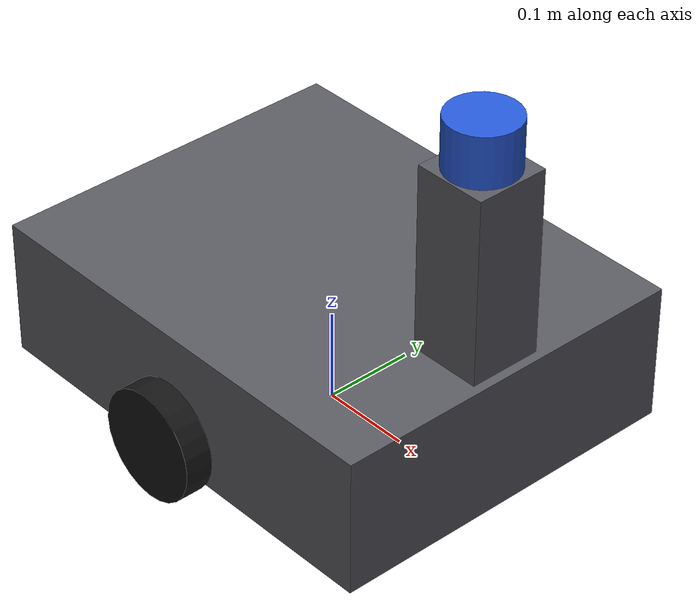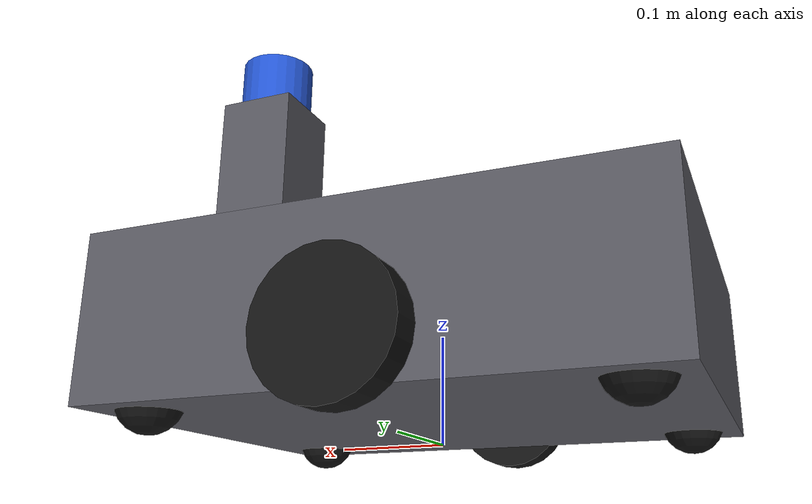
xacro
<?xml version="1.0"?>
<robot name="amr_robot" xmlns:xacro="http://www.ros.org/wiki/xacro">

    <!-- AMR ROBOT - CORE GEOMETRY / KINEMATICS ONLY               -->
    <!-- Only geometry, sensor positions, links, joints            -->

    <!-- ===================== CONSTANTS ========================= -->
    <xacro:property name="pi_num" value="3.1415926535897931"/>

    <!-- ===================== BASE ============================== -->
    <xacro:property name="base_length" value="0.500"/>
    <xacro:property name="base_width"  value="0.400"/>
    <xacro:property name="base_height" value="0.150"/>
    <xacro:property name="base_mass"   value="20.0"/>
    <xacro:property name="ground_clearance" value="0.020"/>

    <!-- base_link at chassis geometric center -->
    <xacro:property name="base_link_z" value="${ground_clearance + base_height/2.0}"/>

    <!-- ===================== DRIVE WHEELS ====================== -->
    <xacro:property name="wheel_radius"      value="0.060"/>
    <xacro:property name="wheel_width"       value="0.030"/>
    <xacro:property name="wheel_mass"        value="2.0"/>
    <xacro:property name="wheel_separation"  value="0.440"/>
    <xacro:property name="wheel_x"           value="0.000"/>
    <xacro:property name="wheel_y"           value="${wheel_separation/2.0}"/>
    <xacro:property name="wheel_z"           value="${wheel_radius - base_link_z}"/>

    <!-- ===================== SUPPORT WHEELS ==================== -->
    <xacro:property name="caster_radius" value="0.030"/>
    <xacro:property name="caster_mass"   value="0.30"/>
    <xacro:property name="caster_x_front" value="0.205"/>
    <xacro:property name="caster_x_rear"  value="-0.205"/>
    <xacro:property name="caster_y"       value="0.155"/>
    <xacro:property name="caster_z"       value="${caster_radius - base_link_z}"/>

    <!-- ===================== LIDAR ============================= -->
    <xacro:property name="lidar_radius" value="0.038"/>
    <xacro:property name="lidar_height" value="0.055"/>
    <xacro:property name="lidar_x" value="0.200"/>
    <xacro:property name="lidar_y" value="0.000"/>
    <xacro:property name="lidar_z_from_ground" value="0.400"/>
    <xacro:property name="lidar_z" value="${lidar_z_from_ground - base_link_z}"/>
    <xacro:property name="lidar_roll"  value="0.0"/>
    <xacro:property name="lidar_pitch" value="0.0"/>
    <xacro:property name="lidar_yaw"   value="0.0"/>

    <!-- Square lidar pole -->
    <xacro:property name="lidar_pole_size_x" value="0.080"/>
    <xacro:property name="lidar_pole_size_y" value="0.080"/>
    <xacro:property name="lidar_pole_height" value="${lidar_z - lidar_height/2.0}"/>
    <xacro:property name="lidar_pole_z" value="${lidar_pole_height/2.0}"/>

    <!-- ===================== IMU =============================== -->
    <xacro:property name="imu_size_x" value="0.040"/>
    <xacro:property name="imu_size_y" value="0.040"/>
    <xacro:property name="imu_size_z" value="0.015"/>
    <xacro:property name="imu_mass"   value="0.05"/>
    <xacro:property name="imu_x" value="0.000"/>
    <xacro:property name="imu_y" value="0.000"/>

    <!-- moved inside robot, near upper inside surface -->
    <xacro:property name="imu_z_from_ground" value="0.155"/>
    <xacro:property name="imu_z" value="${imu_z_from_ground - base_link_z}"/>

    <xacro:property name="imu_roll"  value="0.0"/>
    <xacro:property name="imu_pitch" value="0.0"/>
    <xacro:property name="imu_yaw"   value="0.0"/>

    <!-- ===================== CAMERA ============================ -->
    <xacro:property name="camera_size_x" value="0.030"/>
    <xacro:property name="camera_size_y" value="0.030"/>
    <xacro:property name="camera_size_z" value="0.025"/>
    <xacro:property name="camera_mass"   value="0.03"/>
    <xacro:property name="camera_x" value="0.200"/>
    <xacro:property name="camera_y" value="0.000"/>
    <xacro:property name="camera_z_from_ground" value="0.120"/>
    <xacro:property name="camera_z" value="${camera_z_from_ground - base_link_z}"/>
    <xacro:property name="camera_roll"  value="0.0"/>
    <xacro:property name="camera_pitch" value="0.0"/>
    <xacro:property name="camera_yaw"   value="0.0"/>

    <!-- ===================== MATERIALS ========================= -->
    <material name="base_gray">
      <color rgba="0.35 0.35 0.38 1.0"/>
    </material>

    <material name="wheel_black">
      <color rgba="0.08 0.08 0.08 1.0"/>
    </material>

    <material name="sensor_blue">
      <color rgba="0.15 0.35 0.85 1.0"/>
    </material>

    <material name="sensor_green">
      <color rgba="0.10 0.65 0.25 1.0"/>
    </material>

    <material name="sensor_red">
      <color rgba="0.75 0.15 0.15 1.0"/>
    </material>

    <!-- ===================== MACROS ============================ -->
    <xacro:macro name="box_inertial" params="mass x y z">
      <inertial>
        <mass value="${mass}"/>
        <origin xyz="0 0 0" rpy="0 0 0"/>
        <inertia
          ixx="${(mass/12.0) * (y*y + z*z)}"
          ixy="0.0"
          ixz="0.0"
          iyy="${(mass/12.0) * (x*x + z*z)}"
          iyz="0.0"
          izz="${(mass/12.0) * (x*x + y*y)}"/>
      </inertial>
    </xacro:macro>

    <xacro:macro name="cylinder_y_inertial" params="mass radius length">
      <inertial>
        <mass value="${mass}"/>
        <origin xyz="0 0 0" rpy="0 0 0"/>
        <inertia
          ixx="${(mass/12.0) * (3.0*radius*radius + length*length)}"
          ixy="0.0"
          ixz="0.0"
          iyy="${0.5 * mass * radius * radius}"
          iyz="0.0"
          izz="${(mass/12.0) * (3.0*radius*radius + length*length)}"/>
      </inertial>
    </xacro:macro>

    <xacro:macro name="sphere_inertial" params="mass radius">
      <inertial>
        <mass value="${mass}"/>
        <origin xyz="0 0 0" rpy="0 0 0"/>
        <inertia
          ixx="${0.4 * mass * radius * radius}"
          ixy="0.0"
          ixz="0.0"
          iyy="${0.4 * mass * radius * radius}"
          iyz="0.0"
          izz="${0.4 * mass * radius * radius}"/>
      </inertial>
    </xacro:macro>

    <!-- ===================== FRAMES ============================ -->
    <link name="base_footprint"/>

    <joint name="base_footprint_to_base_link" type="fixed">
      <parent link="base_footprint"/>
      <child link="base_link"/>
      <origin xyz="0 0 ${base_link_z}" rpy="0 0 0"/>
    </joint>

    <!-- ===================== BASE LINK ========================= -->
    <link name="base_link">
      <visual>
        <origin xyz="0 0 0" rpy="0 0 0"/>
        <geometry>
          <box size="${base_length} ${base_width} ${base_height}"/>
        </geometry>
        <material name="base_gray"/>
      </visual>

      <collision>
        <origin xyz="0 0 0" rpy="0 0 0"/>
        <geometry>
          <box size="${base_length} ${base_width} ${base_height}"/>
        </geometry>
      </collision>

      <xacro:box_inertial mass="${base_mass}" x="${base_length}" y="${base_width}" z="${base_height}"/>
    </link>

    <!-- ===================== LEFT DRIVE WHEEL ================== -->
    <link name="left_wheel_link">
      <visual>
        <origin xyz="0 0 0" rpy="${-pi_num/2} 0 0"/>
        <geometry>
          <cylinder radius="${wheel_radius}" length="${wheel_width}"/>
        </geometry>
        <material name="wheel_black"/>
      </visual>

      <collision>
        <origin xyz="0 0 0" rpy="${-pi_num/2} 0 0"/>
        <geometry>
          <cylinder radius="${wheel_radius}" length="${wheel_width}"/>
        </geometry>
      </collision>

      <xacro:cylinder_y_inertial mass="${wheel_mass}" radius="${wheel_radius}" length="${wheel_width}"/>
    </link>

    <joint name="left_wheel_joint" type="continuous">
      <parent link="base_link"/>
      <child link="left_wheel_link"/>
      <origin xyz="${wheel_x} ${wheel_y} ${wheel_z}" rpy="0 0 0"/>
      <axis xyz="0 1 0"/>
    </joint>

    <!-- ===================== RIGHT DRIVE WHEEL ================= -->
    <link name="right_wheel_link">
      <visual>
        <origin xyz="0 0 0" rpy="${-pi_num/2} 0 0"/>
        <geometry>
          <cylinder radius="${wheel_radius}" length="${wheel_width}"/>
        </geometry>
        <material name="wheel_black"/>
      </visual>

      <collision>
        <origin xyz="0 0 0" rpy="${-pi_num/2} 0 0"/>
        <geometry>
          <cylinder radius="${wheel_radius}" length="${wheel_width}"/>
        </geometry>
      </collision>

      <xacro:cylinder_y_inertial mass="${wheel_mass}" radius="${wheel_radius}" length="${wheel_width}"/>
    </link>

    <joint name="right_wheel_joint" type="continuous">
      <parent link="base_link"/>
      <child link="right_wheel_link"/>
      <origin xyz="${wheel_x} ${-wheel_y} ${wheel_z}" rpy="0 0 0"/>
      <axis xyz="0 1 0"/>
    </joint>

    <!-- ===================== SIMPLE CASTERS ==================== -->
    <link name="front_left_caster_link">
      <visual>
        <geometry>
          <sphere radius="${caster_radius}"/>
        </geometry>
        <material name="wheel_black"/>
      </visual>
      <collision>
        <geometry>
          <sphere radius="${caster_radius}"/>
        </geometry>
      </collision>
      <xacro:sphere_inertial mass="${caster_mass}" radius="${caster_radius}"/>
    </link>

    <joint name="front_left_caster_joint" type="fixed">
      <parent link="base_link"/>
      <child link="front_left_caster_link"/>
      <origin xyz="${caster_x_front} ${caster_y} ${caster_z}" rpy="0 0 0"/>
    </joint>

    <link name="front_right_caster_link">
      <visual>
        <geometry>
          <sphere radius="${caster_radius}"/>
        </geometry>
        <material name="wheel_black"/>
      </visual>
      <collision>
        <geometry>
          <sphere radius="${caster_radius}"/>
        </geometry>
      </collision>
      <xacro:sphere_inertial mass="${caster_mass}" radius="${caster_radius}"/>
    </link>

    <joint name="front_right_caster_joint" type="fixed">
      <parent link="base_link"/>
      <child link="front_right_caster_link"/>
      <origin xyz="${caster_x_front} ${-caster_y} ${caster_z}" rpy="0 0 0"/>
    </joint>

    <link name="rear_left_caster_link">
      <visual>
        <geometry>
          <sphere radius="${caster_radius}"/>
        </geometry>
        <material name="wheel_black"/>
      </visual>
      <collision>
        <geometry>
          <sphere radius="${caster_radius}"/>
        </geometry>
      </collision>
      <xacro:sphere_inertial mass="${caster_mass}" radius="${caster_radius}"/>
    </link>

    <joint name="rear_left_caster_joint" type="fixed">
      <parent link="base_link"/>
      <child link="rear_left_caster_link"/>
      <origin xyz="${caster_x_rear} ${caster_y} ${caster_z}" rpy="0 0 0"/>
    </joint>

    <link name="rear_right_caster_link">
      <visual>
        <geometry>
          <sphere radius="${caster_radius}"/>
        </geometry>
        <material name="wheel_black"/>
      </visual>
      <collision>
        <geometry>
          <sphere radius="${caster_radius}"/>
        </geometry>
      </collision>
      <xacro:sphere_inertial mass="${caster_mass}" radius="${caster_radius}"/>
    </link>

    <joint name="rear_right_caster_joint" type="fixed">
      <parent link="base_link"/>
      <child link="rear_right_caster_link"/>
      <origin xyz="${caster_x_rear} ${-caster_y} ${caster_z}" rpy="0 0 0"/>
    </joint>

    <!-- ===================== LIDAR SQUARE POLE ================ -->
    <link name="lidar_pole_link">
  <visual>
    <geometry>
      <box size="${lidar_pole_size_x} ${lidar_pole_size_y} ${lidar_pole_height}"/>
    </geometry>
    <material name="base_gray"/>
  </visual>

  <inertial>
    <mass value="0.001"/>
    <origin xyz="0 0 0" rpy="0 0 0"/>
    <inertia ixx="1e-6" ixy="0" ixz="0" iyy="1e-6" iyz="0" izz="1e-6"/>
  </inertial>
</link>

    <joint name="lidar_pole_joint" type="fixed">
      <parent link="base_link"/>
      <child link="lidar_pole_link"/>
      <origin xyz="${lidar_x} ${lidar_y} ${lidar_pole_z}" rpy="0 0 0"/>
    </joint>

    <!-- ===================== LIDAR BODY ======================== -->
    <link name="lidar_link">
  <visual>
    <geometry>
      <cylinder radius="${lidar_radius}" length="${lidar_height}"/>
    </geometry>
    <material name="sensor_blue"/>
  </visual>

  <inertial>
    <mass value="0.001"/>
    <origin xyz="0 0 0" rpy="0 0 0"/>
    <inertia
      ixx="1e-6" ixy="0.0" ixz="0.0"
      iyy="1e-6" iyz="0.0"
      izz="1e-6"/>
  </inertial>
</link>

    <joint name="lidar_joint" type="fixed">
      <parent link="base_link"/>
      <child link="lidar_link"/>
      <origin xyz="${lidar_x} ${lidar_y} ${lidar_z}" rpy="${lidar_roll} ${lidar_pitch} ${lidar_yaw}"/>
    </joint>

    <!-- ===================== IMU BODY ========================== -->
    <link name="imu_link">
      <visual>
        <geometry>
          <box size="${imu_size_x} ${imu_size_y} ${imu_size_z}"/>
        </geometry>
        <material name="sensor_green"/>
      </visual>

      <collision>
        <geometry>
          <box size="${imu_size_x} ${imu_size_y} ${imu_size_z}"/>
        </geometry>
      </collision>

      <xacro:box_inertial mass="${imu_mass}" x="${imu_size_x}" y="${imu_size_y}" z="${imu_size_z}"/>
    </link>

    <joint name="imu_joint" type="fixed">
      <parent link="base_link"/>
      <child link="imu_link"/>
      <origin xyz="${imu_x} ${imu_y} ${imu_z}" rpy="${imu_roll} ${imu_pitch} ${imu_yaw}"/>
    </joint>

    <!-- ===================== CAMERA BODY ======================= -->
    <link name="camera_link">
      <visual>
        <geometry>
          <box size="${camera_size_x} ${camera_size_y} ${camera_size_z}"/>
        </geometry>
        <material name="sensor_red"/>
      </visual>

      <collision>
        <geometry>
          <box size="${camera_size_x} ${camera_size_y} ${camera_size_z}"/>
        </geometry>
      </collision>

      <xacro:box_inertial mass="${camera_mass}" x="${camera_size_x}" y="${camera_size_y}" z="${camera_size_z}"/>
    </link>

    <joint name="camera_joint" type="fixed">
      <parent link="base_link"/>
      <child link="camera_link"/>
      <origin xyz="${camera_x} ${camera_y} ${camera_z}" rpy="${camera_roll} ${camera_pitch} ${camera_yaw}"/>
    </joint>

  </robot>
